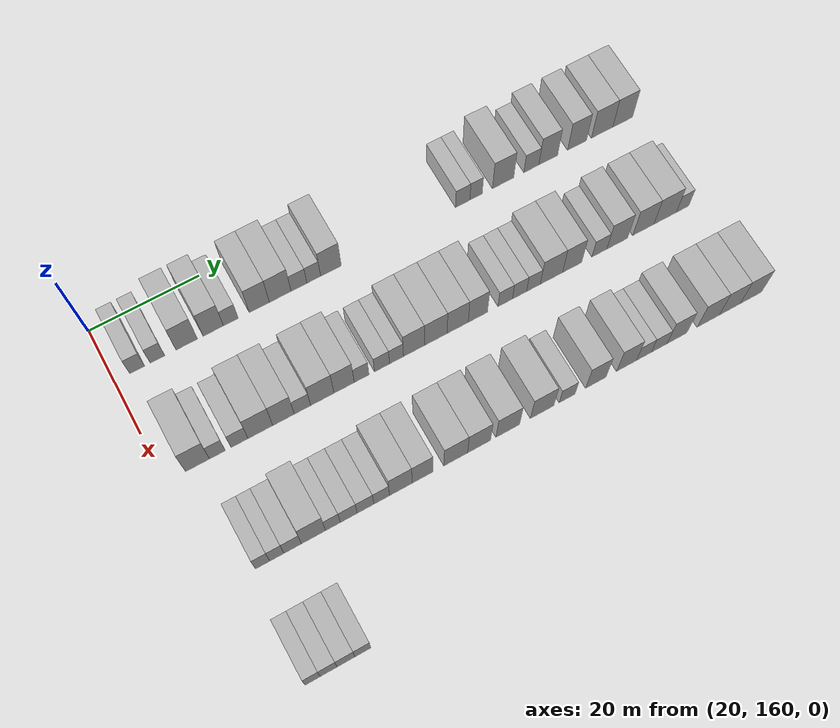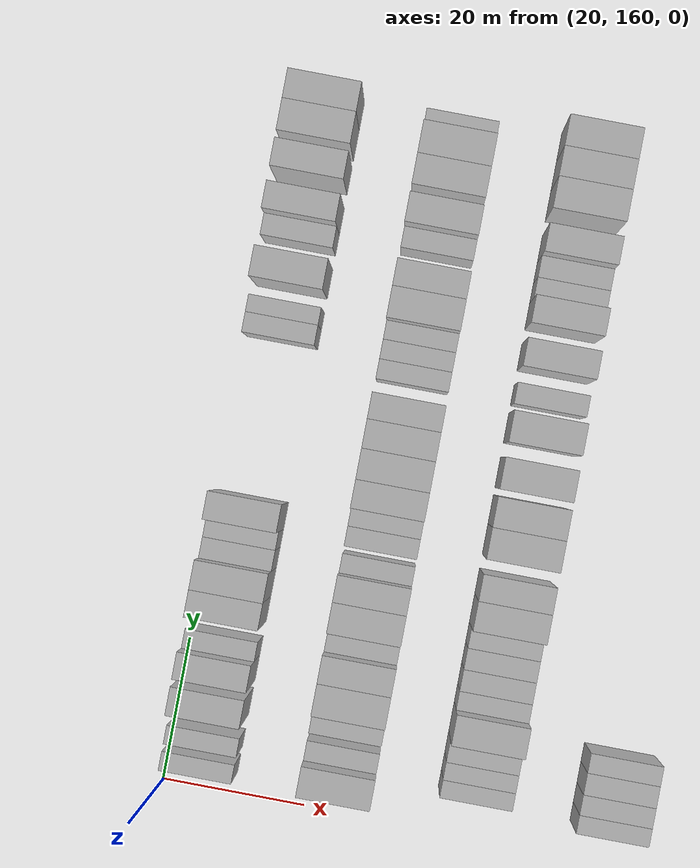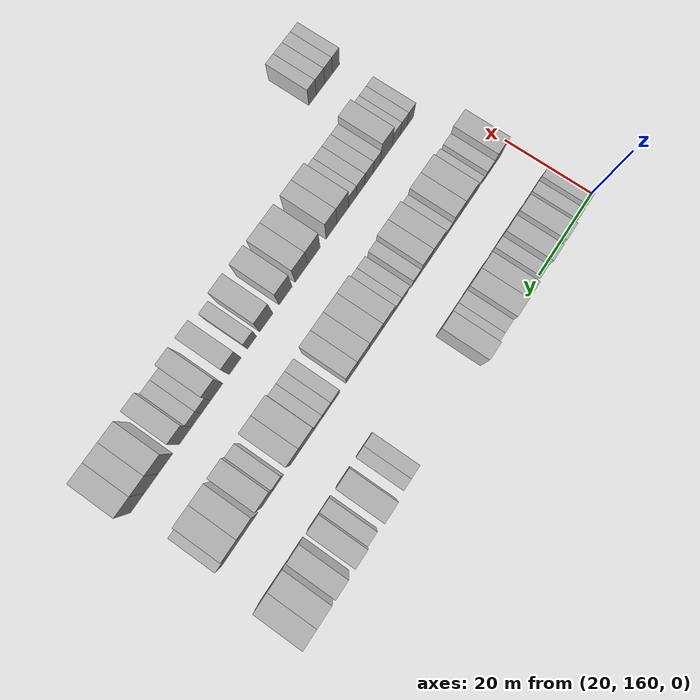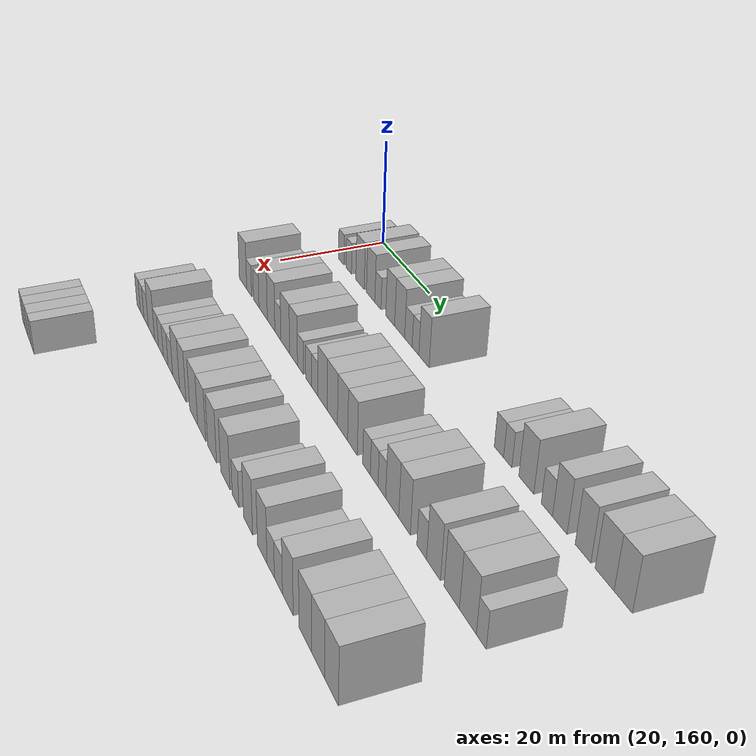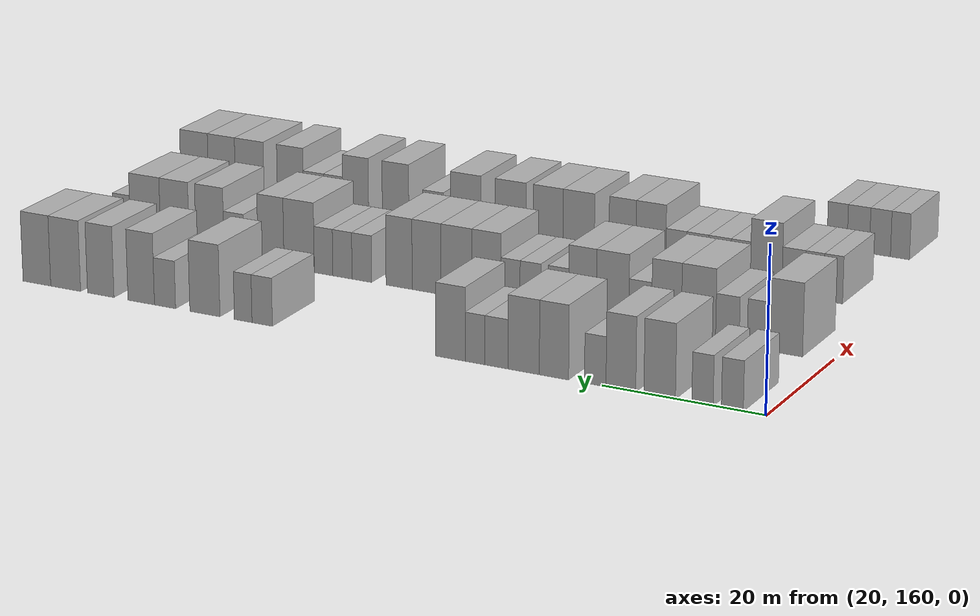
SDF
<sdf version="1.6">
 <world name="default">
  <model name="building_132">
   <static>1</static>
   <pose>25.0000 164.0671 0 0.000000 0.000000 0.000000</pose>
   <link name="link">
    <pose>0 0 3.00 0 0 0</pose>
    <collision name="collision"><geometry><box><size>10.0000 2.6360 6.0000</size></box></geometry></collision>
    <visual name="visual">
     <cast_shadows>0</cast_shadows>
     <geometry><box><size>10.0000 2.6360 6.0000</size></box></geometry>
     <material>
      <script>
       <uri>model://HANNAS_wall/materials/scripts</uri>
       <uri>model://HANNAS_wall/materials/textures</uri>
       <name>vrc/HANNAS_wall</name>
      </script>
     </material>
    </visual>
   </link>
  </model>
  <model name="building_133">
   <static>1</static>
   <pose>25.0000 167.6781 0 0.000000 0.000000 0.000000</pose>
   <link name="link">
    <pose>0 0 3.00 0 0 0</pose>
    <collision name="collision"><geometry><box><size>10.0000 2.5861 6.0000</size></box></geometry></collision>
    <visual name="visual">
     <cast_shadows>0</cast_shadows>
     <geometry><box><size>10.0000 2.5861 6.0000</size></box></geometry>
     <material>
      <script>
       <uri>model://HANNAS_wall/materials/scripts</uri>
       <uri>model://HANNAS_wall/materials/textures</uri>
       <name>vrc/HANNAS_wall</name>
      </script>
     </material>
    </visual>
   </link>
  </model>
  <model name="building_134">
   <static>1</static>
   <pose>25.0000 172.9062 0 0.000000 0.000000 0.000000</pose>
   <link name="link">
    <pose>0 0 4.50 0 0 0</pose>
    <collision name="collision"><geometry><box><size>10.0000 3.8702 9.0000</size></box></geometry></collision>
    <visual name="visual">
     <cast_shadows>0</cast_shadows>
     <geometry><box><size>10.0000 3.8702 9.0000</size></box></geometry>
     <material>
      <script>
       <uri>model://HANNAS_wall/materials/scripts</uri>
       <uri>model://HANNAS_wall/materials/textures</uri>
       <name>vrc/HANNAS_wall</name>
      </script>
     </material>
    </visual>
   </link>
  </model>
  <model name="building_135">
   <static>1</static>
   <pose>25.0000 177.6879 0 0.000000 0.000000 0.000000</pose>
   <link name="link">
    <pose>0 0 4.50 0 0 0</pose>
    <collision name="collision"><geometry><box><size>10.0000 3.6933 9.0000</size></box></geometry></collision>
    <visual name="visual">
     <cast_shadows>0</cast_shadows>
     <geometry><box><size>10.0000 3.6933 9.0000</size></box></geometry>
     <material>
      <script>
       <uri>model://HANNAS_wall/materials/scripts</uri>
       <uri>model://HANNAS_wall/materials/textures</uri>
       <name>vrc/HANNAS_wall</name>
      </script>
     </material>
    </visual>
   </link>
  </model>
  <model name="building_136">
   <static>1</static>
   <pose>25.0000 180.8743 0 0.000000 0.000000 0.000000</pose>
   <link name="link">
    <pose>0 0 3.00 0 0 0</pose>
    <collision name="collision"><geometry><box><size>10.0000 2.6794 6.0000</size></box></geometry></collision>
    <visual name="visual">
     <cast_shadows>0</cast_shadows>
     <geometry><box><size>10.0000 2.6794 6.0000</size></box></geometry>
     <material>
      <script>
       <uri>model://HANNAS_wall/materials/scripts</uri>
       <uri>model://HANNAS_wall/materials/textures</uri>
       <name>vrc/HANNAS_wall</name>
      </script>
     </material>
    </visual>
   </link>
  </model>
  <model name="building_137">
   <static>1</static>
   <pose>25.0000 186.0602 0 0.000000 0.000000 0.000000</pose>
   <link name="link">
    <pose>0 0 4.50 0 0 0</pose>
    <collision name="collision"><geometry><box><size>10.0000 3.6924 9.0000</size></box></geometry></collision>
    <visual name="visual">
     <cast_shadows>0</cast_shadows>
     <geometry><box><size>10.0000 3.6924 9.0000</size></box></geometry>
     <material>
      <script>
       <uri>model://HANNAS_wall/materials/scripts</uri>
       <uri>model://HANNAS_wall/materials/textures</uri>
       <name>vrc/HANNAS_wall</name>
      </script>
     </material>
    </visual>
   </link>
  </model>
  <model name="building_138">
   <static>1</static>
   <pose>25.0000 189.9158 0 0.000000 0.000000 0.000000</pose>
   <link name="link">
    <pose>0 0 4.50 0 0 0</pose>
    <collision name="collision"><geometry><box><size>10.0000 4.0190 9.0000</size></box></geometry></collision>
    <visual name="visual">
     <cast_shadows>0</cast_shadows>
     <geometry><box><size>10.0000 4.0190 9.0000</size></box></geometry>
     <material>
      <script>
       <uri>model://HANNAS_wall/materials/scripts</uri>
       <uri>model://HANNAS_wall/materials/textures</uri>
       <name>vrc/HANNAS_wall</name>
      </script>
     </material>
    </visual>
   </link>
  </model>
  <model name="building_139">
   <static>1</static>
   <pose>25.0000 193.3886 0 0.000000 0.000000 0.000000</pose>
   <link name="link">
    <pose>0 0 3.00 0 0 0</pose>
    <collision name="collision"><geometry><box><size>10.0000 2.9265 6.0000</size></box></geometry></collision>
    <visual name="visual">
     <cast_shadows>0</cast_shadows>
     <geometry><box><size>10.0000 2.9265 6.0000</size></box></geometry>
     <material>
      <script>
       <uri>model://HANNAS_wall/materials/scripts</uri>
       <uri>model://HANNAS_wall/materials/textures</uri>
       <name>vrc/HANNAS_wall</name>
      </script>
     </material>
    </visual>
   </link>
  </model>
  <model name="building_140">
   <static>1</static>
   <pose>25.0000 196.1242 0 0.000000 0.000000 0.000000</pose>
   <link name="link">
    <pose>0 0 3.00 0 0 0</pose>
    <collision name="collision"><geometry><box><size>10.0000 2.5448 6.0000</size></box></geometry></collision>
    <visual name="visual">
     <cast_shadows>0</cast_shadows>
     <geometry><box><size>10.0000 2.5448 6.0000</size></box></geometry>
     <material>
      <script>
       <uri>model://HANNAS_wall/materials/scripts</uri>
       <uri>model://HANNAS_wall/materials/textures</uri>
       <name>vrc/HANNAS_wall</name>
      </script>
     </material>
    </visual>
   </link>
  </model>
  <model name="building_141">
   <static>1</static>
   <pose>25.0000 199.3216 0 0.000000 0.000000 0.000000</pose>
   <link name="link">
    <pose>0 0 4.50 0 0 0</pose>
    <collision name="collision"><geometry><box><size>10.0000 3.8499 9.0000</size></box></geometry></collision>
    <visual name="visual">
     <cast_shadows>0</cast_shadows>
     <geometry><box><size>10.0000 3.8499 9.0000</size></box></geometry>
     <material>
      <script>
       <uri>model://HANNAS_wall/materials/scripts</uri>
       <uri>model://HANNAS_wall/materials/textures</uri>
       <name>vrc/HANNAS_wall</name>
      </script>
     </material>
    </visual>
   </link>
  </model>
  <model name="building_142">
   <static>1</static>
   <pose>25.0000 224.4244 0 0.000000 0.000000 0.000000</pose>
   <link name="link">
    <pose>0 0 3.00 0 0 0</pose>
    <collision name="collision"><geometry><box><size>10.0000 2.7853 6.0000</size></box></geometry></collision>
    <visual name="visual">
     <cast_shadows>0</cast_shadows>
     <geometry><box><size>10.0000 2.7853 6.0000</size></box></geometry>
     <material>
      <script>
       <uri>model://HANNAS_wall/materials/scripts</uri>
       <uri>model://HANNAS_wall/materials/textures</uri>
       <name>vrc/HANNAS_wall</name>
      </script>
     </material>
    </visual>
   </link>
  </model>
  <model name="building_143">
   <static>1</static>
   <pose>25.0000 227.0299 0 0.000000 0.000000 0.000000</pose>
   <link name="link">
    <pose>0 0 3.00 0 0 0</pose>
    <collision name="collision"><geometry><box><size>10.0000 2.4257 6.0000</size></box></geometry></collision>
    <visual name="visual">
     <cast_shadows>0</cast_shadows>
     <geometry><box><size>10.0000 2.4257 6.0000</size></box></geometry>
     <material>
      <script>
       <uri>model://HANNAS_wall/materials/scripts</uri>
       <uri>model://HANNAS_wall/materials/textures</uri>
       <name>vrc/HANNAS_wall</name>
      </script>
     </material>
    </visual>
   </link>
  </model>
  <model name="building_144">
   <static>1</static>
   <pose>25.0000 232.3361 0 0.000000 0.000000 0.000000</pose>
   <link name="link">
    <pose>0 0 4.50 0 0 0</pose>
    <collision name="collision"><geometry><box><size>10.0000 4.1868 9.0000</size></box></geometry></collision>
    <visual name="visual">
     <cast_shadows>0</cast_shadows>
     <geometry><box><size>10.0000 4.1868 9.0000</size></box></geometry>
     <material>
      <script>
       <uri>model://HANNAS_wall/materials/scripts</uri>
       <uri>model://HANNAS_wall/materials/textures</uri>
       <name>vrc/HANNAS_wall</name>
      </script>
     </material>
    </visual>
   </link>
  </model>
  <model name="building_145">
   <static>1</static>
   <pose>25.0000 237.9177 0 0.000000 0.000000 0.000000</pose>
   <link name="link">
    <pose>0 0 3.00 0 0 0</pose>
    <collision name="collision"><geometry><box><size>10.0000 2.9762 6.0000</size></box></geometry></collision>
    <visual name="visual">
     <cast_shadows>0</cast_shadows>
     <geometry><box><size>10.0000 2.9762 6.0000</size></box></geometry>
     <material>
      <script>
       <uri>model://HANNAS_wall/materials/scripts</uri>
       <uri>model://HANNAS_wall/materials/textures</uri>
       <name>vrc/HANNAS_wall</name>
      </script>
     </material>
    </visual>
   </link>
  </model>
  <model name="building_146">
   <static>1</static>
   <pose>25.0000 241.2776 0 0.000000 0.000000 0.000000</pose>
   <link name="link">
    <pose>0 0 4.50 0 0 0</pose>
    <collision name="collision"><geometry><box><size>10.0000 3.7437 9.0000</size></box></geometry></collision>
    <visual name="visual">
     <cast_shadows>0</cast_shadows>
     <geometry><box><size>10.0000 3.7437 9.0000</size></box></geometry>
     <material>
      <script>
       <uri>model://HANNAS_wall/materials/scripts</uri>
       <uri>model://HANNAS_wall/materials/textures</uri>
       <name>vrc/HANNAS_wall</name>
      </script>
     </material>
    </visual>
   </link>
  </model>
  <model name="building_147">
   <static>1</static>
   <pose>25.0000 247.0476 0 0.000000 0.000000 0.000000</pose>
   <link name="link">
    <pose>0 0 4.50 0 0 0</pose>
    <collision name="collision"><geometry><box><size>10.0000 3.7961 9.0000</size></box></geometry></collision>
    <visual name="visual">
     <cast_shadows>0</cast_shadows>
     <geometry><box><size>10.0000 3.7961 9.0000</size></box></geometry>
     <material>
      <script>
       <uri>model://HANNAS_wall/materials/scripts</uri>
       <uri>model://HANNAS_wall/materials/textures</uri>
       <name>vrc/HANNAS_wall</name>
      </script>
     </material>
    </visual>
   </link>
  </model>
  <model name="building_148">
   <static>1</static>
   <pose>25.0000 252.1090 0 0.000000 0.000000 0.000000</pose>
   <link name="link">
    <pose>0 0 4.50 0 0 0</pose>
    <collision name="collision"><geometry><box><size>10.0000 4.3268 9.0000</size></box></geometry></collision>
    <visual name="visual">
     <cast_shadows>0</cast_shadows>
     <geometry><box><size>10.0000 4.3268 9.0000</size></box></geometry>
     <material>
      <script>
       <uri>model://HANNAS_wall/materials/scripts</uri>
       <uri>model://HANNAS_wall/materials/textures</uri>
       <name>vrc/HANNAS_wall</name>
      </script>
     </material>
    </visual>
   </link>
  </model>
  <model name="building_149">
   <static>1</static>
   <pose>25.0000 256.2875 0 0.000000 0.000000 0.000000</pose>
   <link name="link">
    <pose>0 0 4.50 0 0 0</pose>
    <collision name="collision"><geometry><box><size>10.0000 4.0302 9.0000</size></box></geometry></collision>
    <visual name="visual">
     <cast_shadows>0</cast_shadows>
     <geometry><box><size>10.0000 4.0302 9.0000</size></box></geometry>
     <material>
      <script>
       <uri>model://HANNAS_wall/materials/scripts</uri>
       <uri>model://HANNAS_wall/materials/textures</uri>
       <name>vrc/HANNAS_wall</name>
      </script>
     </material>
    </visual>
   </link>
  </model>
  <model name="building_304">
   <static>1</static>
   <pose>44.0000 165.6217 0 0.000000 0.000000 0.000000</pose>
   <link name="link">
    <pose>0 0 4.50 0 0 0</pose>
    <collision name="collision"><geometry><box><size>10.0000 4.1815 9.0000</size></box></geometry></collision>
    <visual name="visual">
     <cast_shadows>0</cast_shadows>
     <geometry><box><size>10.0000 4.1815 9.0000</size></box></geometry>
     <material>
      <script>
       <uri>model://HANNAS_wall/materials/scripts</uri>
       <uri>model://HANNAS_wall/materials/textures</uri>
       <name>vrc/HANNAS_wall</name>
      </script>
     </material>
    </visual>
   </link>
  </model>
  <model name="building_305">
   <static>1</static>
   <pose>44.0000 169.0874 0 0.000000 0.000000 0.000000</pose>
   <link name="link">
    <pose>0 0 3.00 0 0 0</pose>
    <collision name="collision"><geometry><box><size>10.0000 2.7500 6.0000</size></box></geometry></collision>
    <visual name="visual">
     <cast_shadows>0</cast_shadows>
     <geometry><box><size>10.0000 2.7500 6.0000</size></box></geometry>
     <material>
      <script>
       <uri>model://HANNAS_wall/materials/scripts</uri>
       <uri>model://HANNAS_wall/materials/textures</uri>
       <name>vrc/HANNAS_wall</name>
      </script>
     </material>
    </visual>
   </link>
  </model>
  <model name="building_306">
   <static>1</static>
   <pose>44.0000 172.9599 0 0.000000 0.000000 0.000000</pose>
   <link name="link">
    <pose>0 0 3.00 0 0 0</pose>
    <collision name="collision"><geometry><box><size>10.0000 2.9949 6.0000</size></box></geometry></collision>
    <visual name="visual">
     <cast_shadows>0</cast_shadows>
     <geometry><box><size>10.0000 2.9949 6.0000</size></box></geometry>
     <material>
      <script>
       <uri>model://HANNAS_wall/materials/scripts</uri>
       <uri>model://HANNAS_wall/materials/textures</uri>
       <name>vrc/HANNAS_wall</name>
      </script>
     </material>
    </visual>
   </link>
  </model>
  <model name="building_307">
   <static>1</static>
   <pose>44.0000 176.6464 0 0.000000 0.000000 0.000000</pose>
   <link name="link">
    <pose>0 0 4.50 0 0 0</pose>
    <collision name="collision"><geometry><box><size>10.0000 4.3780 9.0000</size></box></geometry></collision>
    <visual name="visual">
     <cast_shadows>0</cast_shadows>
     <geometry><box><size>10.0000 4.3780 9.0000</size></box></geometry>
     <material>
      <script>
       <uri>model://HANNAS_wall/materials/scripts</uri>
       <uri>model://HANNAS_wall/materials/textures</uri>
       <name>vrc/HANNAS_wall</name>
      </script>
     </material>
    </visual>
   </link>
  </model>
  <model name="building_308">
   <static>1</static>
   <pose>44.0000 180.7453 0 0.000000 0.000000 0.000000</pose>
   <link name="link">
    <pose>0 0 4.50 0 0 0</pose>
    <collision name="collision"><geometry><box><size>10.0000 3.8199 9.0000</size></box></geometry></collision>
    <visual name="visual">
     <cast_shadows>0</cast_shadows>
     <geometry><box><size>10.0000 3.8199 9.0000</size></box></geometry>
     <material>
      <script>
       <uri>model://HANNAS_wall/materials/scripts</uri>
       <uri>model://HANNAS_wall/materials/textures</uri>
       <name>vrc/HANNAS_wall</name>
      </script>
     </material>
    </visual>
   </link>
  </model>
  <model name="building_309">
   <static>1</static>
   <pose>44.0000 184.1273 0 0.000000 0.000000 0.000000</pose>
   <link name="link">
    <pose>0 0 3.00 0 0 0</pose>
    <collision name="collision"><geometry><box><size>10.0000 2.9441 6.0000</size></box></geometry></collision>
    <visual name="visual">
     <cast_shadows>0</cast_shadows>
     <geometry><box><size>10.0000 2.9441 6.0000</size></box></geometry>
     <material>
      <script>
       <uri>model://HANNAS_wall/materials/scripts</uri>
       <uri>model://HANNAS_wall/materials/textures</uri>
       <name>vrc/HANNAS_wall</name>
      </script>
     </material>
    </visual>
   </link>
  </model>
  <model name="building_310">
   <static>1</static>
   <pose>44.0000 187.7050 0 0.000000 0.000000 0.000000</pose>
   <link name="link">
    <pose>0 0 4.50 0 0 0</pose>
    <collision name="collision"><geometry><box><size>10.0000 4.2112 9.0000</size></box></geometry></collision>
    <visual name="visual">
     <cast_shadows>0</cast_shadows>
     <geometry><box><size>10.0000 4.2112 9.0000</size></box></geometry>
     <material>
      <script>
       <uri>model://HANNAS_wall/materials/scripts</uri>
       <uri>model://HANNAS_wall/materials/textures</uri>
       <name>vrc/HANNAS_wall</name>
      </script>
     </material>
    </visual>
   </link>
  </model>
  <model name="building_311">
   <static>1</static>
   <pose>44.0000 191.6501 0 0.000000 0.000000 0.000000</pose>
   <link name="link">
    <pose>0 0 4.50 0 0 0</pose>
    <collision name="collision"><geometry><box><size>10.0000 3.6789 9.0000</size></box></geometry></collision>
    <visual name="visual">
     <cast_shadows>0</cast_shadows>
     <geometry><box><size>10.0000 3.6789 9.0000</size></box></geometry>
     <material>
      <script>
       <uri>model://HANNAS_wall/materials/scripts</uri>
       <uri>model://HANNAS_wall/materials/textures</uri>
       <name>vrc/HANNAS_wall</name>
      </script>
     </material>
    </visual>
   </link>
  </model>
  <model name="building_312">
   <static>1</static>
   <pose>44.0000 194.8314 0 0.000000 0.000000 0.000000</pose>
   <link name="link">
    <pose>0 0 3.00 0 0 0</pose>
    <collision name="collision"><geometry><box><size>10.0000 2.6838 6.0000</size></box></geometry></collision>
    <visual name="visual">
     <cast_shadows>0</cast_shadows>
     <geometry><box><size>10.0000 2.6838 6.0000</size></box></geometry>
     <material>
      <script>
       <uri>model://HANNAS_wall/materials/scripts</uri>
       <uri>model://HANNAS_wall/materials/textures</uri>
       <name>vrc/HANNAS_wall</name>
      </script>
     </material>
    </visual>
   </link>
  </model>
  <model name="building_313">
   <static>1</static>
   <pose>44.0000 198.5536 0 0.000000 0.000000 0.000000</pose>
   <link name="link">
    <pose>0 0 3.00 0 0 0</pose>
    <collision name="collision"><geometry><box><size>10.0000 2.7606 6.0000</size></box></geometry></collision>
    <visual name="visual">
     <cast_shadows>0</cast_shadows>
     <geometry><box><size>10.0000 2.7606 6.0000</size></box></geometry>
     <material>
      <script>
       <uri>model://HANNAS_wall/materials/scripts</uri>
       <uri>model://HANNAS_wall/materials/textures</uri>
       <name>vrc/HANNAS_wall</name>
      </script>
     </material>
    </visual>
   </link>
  </model>
  <model name="building_314">
   <static>1</static>
   <pose>44.0000 201.2139 0 0.000000 0.000000 0.000000</pose>
   <link name="link">
    <pose>0 0 3.00 0 0 0</pose>
    <collision name="collision"><geometry><box><size>10.0000 2.5600 6.0000</size></box></geometry></collision>
    <visual name="visual">
     <cast_shadows>0</cast_shadows>
     <geometry><box><size>10.0000 2.5600 6.0000</size></box></geometry>
     <material>
      <script>
       <uri>model://HANNAS_wall/materials/scripts</uri>
       <uri>model://HANNAS_wall/materials/textures</uri>
       <name>vrc/HANNAS_wall</name>
      </script>
     </material>
    </visual>
   </link>
  </model>
  <model name="building_315">
   <static>1</static>
   <pose>44.0000 204.4459 0 0.000000 0.000000 0.000000</pose>
   <link name="link">
    <pose>0 0 4.50 0 0 0</pose>
    <collision name="collision"><geometry><box><size>10.0000 3.9041 9.0000</size></box></geometry></collision>
    <visual name="visual">
     <cast_shadows>0</cast_shadows>
     <geometry><box><size>10.0000 3.9041 9.0000</size></box></geometry>
     <material>
      <script>
       <uri>model://HANNAS_wall/materials/scripts</uri>
       <uri>model://HANNAS_wall/materials/textures</uri>
       <name>vrc/HANNAS_wall</name>
      </script>
     </material>
    </visual>
   </link>
  </model>
  <model name="building_316">
   <static>1</static>
   <pose>44.0000 208.5013 0 0.000000 0.000000 0.000000</pose>
   <link name="link">
    <pose>0 0 4.50 0 0 0</pose>
    <collision name="collision"><geometry><box><size>10.0000 4.2067 9.0000</size></box></geometry></collision>
    <visual name="visual">
     <cast_shadows>0</cast_shadows>
     <geometry><box><size>10.0000 4.2067 9.0000</size></box></geometry>
     <material>
      <script>
       <uri>model://HANNAS_wall/materials/scripts</uri>
       <uri>model://HANNAS_wall/materials/textures</uri>
       <name>vrc/HANNAS_wall</name>
      </script>
     </material>
    </visual>
   </link>
  </model>
  <model name="building_317">
   <static>1</static>
   <pose>44.0000 212.5842 0 0.000000 0.000000 0.000000</pose>
   <link name="link">
    <pose>0 0 4.50 0 0 0</pose>
    <collision name="collision"><geometry><box><size>10.0000 3.9591 9.0000</size></box></geometry></collision>
    <visual name="visual">
     <cast_shadows>0</cast_shadows>
     <geometry><box><size>10.0000 3.9591 9.0000</size></box></geometry>
     <material>
      <script>
       <uri>model://HANNAS_wall/materials/scripts</uri>
       <uri>model://HANNAS_wall/materials/textures</uri>
       <name>vrc/HANNAS_wall</name>
      </script>
     </material>
    </visual>
   </link>
  </model>
  <model name="building_318">
   <static>1</static>
   <pose>44.0000 216.3740 0 0.000000 0.000000 0.000000</pose>
   <link name="link">
    <pose>0 0 4.50 0 0 0</pose>
    <collision name="collision"><geometry><box><size>10.0000 3.6204 9.0000</size></box></geometry></collision>
    <visual name="visual">
     <cast_shadows>0</cast_shadows>
     <geometry><box><size>10.0000 3.6204 9.0000</size></box></geometry>
     <material>
      <script>
       <uri>model://HANNAS_wall/materials/scripts</uri>
       <uri>model://HANNAS_wall/materials/textures</uri>
       <name>vrc/HANNAS_wall</name>
      </script>
     </material>
    </visual>
   </link>
  </model>
  <model name="building_319">
   <static>1</static>
   <pose>44.0000 221.5560 0 0.000000 0.000000 0.000000</pose>
   <link name="link">
    <pose>0 0 3.00 0 0 0</pose>
    <collision name="collision"><geometry><box><size>10.0000 2.7437 6.0000</size></box></geometry></collision>
    <visual name="visual">
     <cast_shadows>0</cast_shadows>
     <geometry><box><size>10.0000 2.7437 6.0000</size></box></geometry>
     <material>
      <script>
       <uri>model://HANNAS_wall/materials/scripts</uri>
       <uri>model://HANNAS_wall/materials/textures</uri>
       <name>vrc/HANNAS_wall</name>
      </script>
     </material>
    </visual>
   </link>
  </model>
  <model name="building_320">
   <static>1</static>
   <pose>44.0000 224.2764 0 0.000000 0.000000 0.000000</pose>
   <link name="link">
    <pose>0 0 3.00 0 0 0</pose>
    <collision name="collision"><geometry><box><size>10.0000 2.6971 6.0000</size></box></geometry></collision>
    <visual name="visual">
     <cast_shadows>0</cast_shadows>
     <geometry><box><size>10.0000 2.6971 6.0000</size></box></geometry>
     <material>
      <script>
       <uri>model://HANNAS_wall/materials/scripts</uri>
       <uri>model://HANNAS_wall/materials/textures</uri>
       <name>vrc/HANNAS_wall</name>
      </script>
     </material>
    </visual>
   </link>
  </model>
  <model name="building_321">
   <static>1</static>
   <pose>44.0000 226.9335 0 0.000000 0.000000 0.000000</pose>
   <link name="link">
    <pose>0 0 3.00 0 0 0</pose>
    <collision name="collision"><geometry><box><size>10.0000 2.6172 6.0000</size></box></geometry></collision>
    <visual name="visual">
     <cast_shadows>0</cast_shadows>
     <geometry><box><size>10.0000 2.6172 6.0000</size></box></geometry>
     <material>
      <script>
       <uri>model://HANNAS_wall/materials/scripts</uri>
       <uri>model://HANNAS_wall/materials/textures</uri>
       <name>vrc/HANNAS_wall</name>
      </script>
     </material>
    </visual>
   </link>
  </model>
  <model name="building_322">
   <static>1</static>
   <pose>44.0000 230.3954 0 0.000000 0.000000 0.000000</pose>
   <link name="link">
    <pose>0 0 4.50 0 0 0</pose>
    <collision name="collision"><geometry><box><size>10.0000 4.3066 9.0000</size></box></geometry></collision>
    <visual name="visual">
     <cast_shadows>0</cast_shadows>
     <geometry><box><size>10.0000 4.3066 9.0000</size></box></geometry>
     <material>
      <script>
       <uri>model://HANNAS_wall/materials/scripts</uri>
       <uri>model://HANNAS_wall/materials/textures</uri>
       <name>vrc/HANNAS_wall</name>
      </script>
     </material>
    </visual>
   </link>
  </model>
  <model name="building_323">
   <static>1</static>
   <pose>44.0000 234.4070 0 0.000000 0.000000 0.000000</pose>
   <link name="link">
    <pose>0 0 4.50 0 0 0</pose>
    <collision name="collision"><geometry><box><size>10.0000 3.7166 9.0000</size></box></geometry></collision>
    <visual name="visual">
     <cast_shadows>0</cast_shadows>
     <geometry><box><size>10.0000 3.7166 9.0000</size></box></geometry>
     <material>
      <script>
       <uri>model://HANNAS_wall/materials/scripts</uri>
       <uri>model://HANNAS_wall/materials/textures</uri>
       <name>vrc/HANNAS_wall</name>
      </script>
     </material>
    </visual>
   </link>
  </model>
  <model name="building_324">
   <static>1</static>
   <pose>44.0000 239.7242 0 0.000000 0.000000 0.000000</pose>
   <link name="link">
    <pose>0 0 3.00 0 0 0</pose>
    <collision name="collision"><geometry><box><size>10.0000 2.9178 6.0000</size></box></geometry></collision>
    <visual name="visual">
     <cast_shadows>0</cast_shadows>
     <geometry><box><size>10.0000 2.9178 6.0000</size></box></geometry>
     <material>
      <script>
       <uri>model://HANNAS_wall/materials/scripts</uri>
       <uri>model://HANNAS_wall/materials/textures</uri>
       <name>vrc/HANNAS_wall</name>
      </script>
     </material>
    </visual>
   </link>
  </model>
  <model name="building_325">
   <static>1</static>
   <pose>44.0000 243.2228 0 0.000000 0.000000 0.000000</pose>
   <link name="link">
    <pose>0 0 4.50 0 0 0</pose>
    <collision name="collision"><geometry><box><size>10.0000 4.0794 9.0000</size></box></geometry></collision>
    <visual name="visual">
     <cast_shadows>0</cast_shadows>
     <geometry><box><size>10.0000 4.0794 9.0000</size></box></geometry>
     <material>
      <script>
       <uri>model://HANNAS_wall/materials/scripts</uri>
       <uri>model://HANNAS_wall/materials/textures</uri>
       <name>vrc/HANNAS_wall</name>
      </script>
     </material>
    </visual>
   </link>
  </model>
  <model name="building_326">
   <static>1</static>
   <pose>44.0000 248.3640 0 0.000000 0.000000 0.000000</pose>
   <link name="link">
    <pose>0 0 4.50 0 0 0</pose>
    <collision name="collision"><geometry><box><size>10.0000 4.2029 9.0000</size></box></geometry></collision>
    <visual name="visual">
     <cast_shadows>0</cast_shadows>
     <geometry><box><size>10.0000 4.2029 9.0000</size></box></geometry>
     <material>
      <script>
       <uri>model://HANNAS_wall/materials/scripts</uri>
       <uri>model://HANNAS_wall/materials/textures</uri>
       <name>vrc/HANNAS_wall</name>
      </script>
     </material>
    </visual>
   </link>
  </model>
  <model name="building_327">
   <static>1</static>
   <pose>44.0000 252.7003 0 0.000000 0.000000 0.000000</pose>
   <link name="link">
    <pose>0 0 4.50 0 0 0</pose>
    <collision name="collision"><geometry><box><size>10.0000 4.4698 9.0000</size></box></geometry></collision>
    <visual name="visual">
     <cast_shadows>0</cast_shadows>
     <geometry><box><size>10.0000 4.4698 9.0000</size></box></geometry>
     <material>
      <script>
       <uri>model://HANNAS_wall/materials/scripts</uri>
       <uri>model://HANNAS_wall/materials/textures</uri>
       <name>vrc/HANNAS_wall</name>
      </script>
     </material>
    </visual>
   </link>
  </model>
  <model name="building_328">
   <static>1</static>
   <pose>44.0000 256.1833 0 0.000000 0.000000 0.000000</pose>
   <link name="link">
    <pose>0 0 3.00 0 0 0</pose>
    <collision name="collision"><geometry><box><size>10.0000 2.4962 6.0000</size></box></geometry></collision>
    <visual name="visual">
     <cast_shadows>0</cast_shadows>
     <geometry><box><size>10.0000 2.4962 6.0000</size></box></geometry>
     <material>
      <script>
       <uri>model://HANNAS_wall/materials/scripts</uri>
       <uri>model://HANNAS_wall/materials/textures</uri>
       <name>vrc/HANNAS_wall</name>
      </script>
     </material>
    </visual>
   </link>
  </model>
  <model name="building_477">
   <static>1</static>
   <pose>63.0000 167.4214 0 0.000000 0.000000 0.000000</pose>
   <link name="link">
    <pose>0 0 3.00 0 0 0</pose>
    <collision name="collision"><geometry><box><size>10.0000 2.4494 6.0000</size></box></geometry></collision>
    <visual name="visual">
     <cast_shadows>0</cast_shadows>
     <geometry><box><size>10.0000 2.4494 6.0000</size></box></geometry>
     <material>
      <script>
       <uri>model://HANNAS_wall/materials/scripts</uri>
       <uri>model://HANNAS_wall/materials/textures</uri>
       <name>vrc/HANNAS_wall</name>
      </script>
     </material>
    </visual>
   </link>
  </model>
  <model name="building_478">
   <static>1</static>
   <pose>63.0000 169.8638 0 0.000000 0.000000 0.000000</pose>
   <link name="link">
    <pose>0 0 3.00 0 0 0</pose>
    <collision name="collision"><geometry><box><size>10.0000 2.4354 6.0000</size></box></geometry></collision>
    <visual name="visual">
     <cast_shadows>0</cast_shadows>
     <geometry><box><size>10.0000 2.4354 6.0000</size></box></geometry>
     <material>
      <script>
       <uri>model://HANNAS_wall/materials/scripts</uri>
       <uri>model://HANNAS_wall/materials/textures</uri>
       <name>vrc/HANNAS_wall</name>
      </script>
     </material>
    </visual>
   </link>
  </model>
  <model name="building_479">
   <static>1</static>
   <pose>63.0000 172.5766 0 0.000000 0.000000 0.000000</pose>
   <link name="link">
    <pose>0 0 3.00 0 0 0</pose>
    <collision name="collision"><geometry><box><size>10.0000 2.9901 6.0000</size></box></geometry></collision>
    <visual name="visual">
     <cast_shadows>0</cast_shadows>
     <geometry><box><size>10.0000 2.9901 6.0000</size></box></geometry>
     <material>
      <script>
       <uri>model://HANNAS_wall/materials/scripts</uri>
       <uri>model://HANNAS_wall/materials/textures</uri>
       <name>vrc/HANNAS_wall</name>
      </script>
     </material>
    </visual>
   </link>
  </model>
  <model name="building_480">
   <static>1</static>
   <pose>63.0000 176.1575 0 0.000000 0.000000 0.000000</pose>
   <link name="link">
    <pose>0 0 4.50 0 0 0</pose>
    <collision name="collision"><geometry><box><size>10.0000 4.1718 9.0000</size></box></geometry></collision>
    <visual name="visual">
     <cast_shadows>0</cast_shadows>
     <geometry><box><size>10.0000 4.1718 9.0000</size></box></geometry>
     <material>
      <script>
       <uri>model://HANNAS_wall/materials/scripts</uri>
       <uri>model://HANNAS_wall/materials/textures</uri>
       <name>vrc/HANNAS_wall</name>
      </script>
     </material>
    </visual>
   </link>
  </model>
  <model name="building_481">
   <static>1</static>
   <pose>63.0000 179.5394 0 0.000000 0.000000 0.000000</pose>
   <link name="link">
    <pose>0 0 3.00 0 0 0</pose>
    <collision name="collision"><geometry><box><size>10.0000 2.5919 6.0000</size></box></geometry></collision>
    <visual name="visual">
     <cast_shadows>0</cast_shadows>
     <geometry><box><size>10.0000 2.5919 6.0000</size></box></geometry>
     <material>
      <script>
       <uri>model://HANNAS_wall/materials/scripts</uri>
       <uri>model://HANNAS_wall/materials/textures</uri>
       <name>vrc/HANNAS_wall</name>
      </script>
     </material>
    </visual>
   </link>
  </model>
  <model name="building_482">
   <static>1</static>
   <pose>63.0000 182.3207 0 0.000000 0.000000 0.000000</pose>
   <link name="link">
    <pose>0 0 3.00 0 0 0</pose>
    <collision name="collision"><geometry><box><size>10.0000 2.9708 6.0000</size></box></geometry></collision>
    <visual name="visual">
     <cast_shadows>0</cast_shadows>
     <geometry><box><size>10.0000 2.9708 6.0000</size></box></geometry>
     <material>
      <script>
       <uri>model://HANNAS_wall/materials/scripts</uri>
       <uri>model://HANNAS_wall/materials/textures</uri>
       <name>vrc/HANNAS_wall</name>
      </script>
     </material>
    </visual>
   </link>
  </model>
  <model name="building_483">
   <static>1</static>
   <pose>63.0000 185.2735 0 0.000000 0.000000 0.000000</pose>
   <link name="link">
    <pose>0 0 3.00 0 0 0</pose>
    <collision name="collision"><geometry><box><size>10.0000 2.9347 6.0000</size></box></geometry></collision>
    <visual name="visual">
     <cast_shadows>0</cast_shadows>
     <geometry><box><size>10.0000 2.9347 6.0000</size></box></geometry>
     <material>
      <script>
       <uri>model://HANNAS_wall/materials/scripts</uri>
       <uri>model://HANNAS_wall/materials/textures</uri>
       <name>vrc/HANNAS_wall</name>
      </script>
     </material>
    </visual>
   </link>
  </model>
  <model name="building_484">
   <static>1</static>
   <pose>63.0000 188.1215 0 0.000000 0.000000 0.000000</pose>
   <link name="link">
    <pose>0 0 3.00 0 0 0</pose>
    <collision name="collision"><geometry><box><size>10.0000 2.7613 6.0000</size></box></geometry></collision>
    <visual name="visual">
     <cast_shadows>0</cast_shadows>
     <geometry><box><size>10.0000 2.7613 6.0000</size></box></geometry>
     <material>
      <script>
       <uri>model://HANNAS_wall/materials/scripts</uri>
       <uri>model://HANNAS_wall/materials/textures</uri>
       <name>vrc/HANNAS_wall</name>
      </script>
     </material>
    </visual>
   </link>
  </model>
  <model name="building_485">
   <static>1</static>
   <pose>63.0000 191.5206 0 0.000000 0.000000 0.000000</pose>
   <link name="link">
    <pose>0 0 4.50 0 0 0</pose>
    <collision name="collision"><geometry><box><size>10.0000 4.0368 9.0000</size></box></geometry></collision>
    <visual name="visual">
     <cast_shadows>0</cast_shadows>
     <geometry><box><size>10.0000 4.0368 9.0000</size></box></geometry>
     <material>
      <script>
       <uri>model://HANNAS_wall/materials/scripts</uri>
       <uri>model://HANNAS_wall/materials/textures</uri>
       <name>vrc/HANNAS_wall</name>
      </script>
     </material>
    </visual>
   </link>
  </model>
  <model name="building_486">
   <static>1</static>
   <pose>63.0000 195.3687 0 0.000000 0.000000 0.000000</pose>
   <link name="link">
    <pose>0 0 4.50 0 0 0</pose>
    <collision name="collision"><geometry><box><size>10.0000 3.6594 9.0000</size></box></geometry></collision>
    <visual name="visual">
     <cast_shadows>0</cast_shadows>
     <geometry><box><size>10.0000 3.6594 9.0000</size></box></geometry>
     <material>
      <script>
       <uri>model://HANNAS_wall/materials/scripts</uri>
       <uri>model://HANNAS_wall/materials/textures</uri>
       <name>vrc/HANNAS_wall</name>
      </script>
     </material>
    </visual>
   </link>
  </model>
  <model name="building_487">
   <static>1</static>
   <pose>63.0000 201.3502 0 0.000000 0.000000 0.000000</pose>
   <link name="link">
    <pose>0 0 4.50 0 0 0</pose>
    <collision name="collision"><geometry><box><size>10.0000 4.3036 9.0000</size></box></geometry></collision>
    <visual name="visual">
     <cast_shadows>0</cast_shadows>
     <geometry><box><size>10.0000 4.3036 9.0000</size></box></geometry>
     <material>
      <script>
       <uri>model://HANNAS_wall/materials/scripts</uri>
       <uri>model://HANNAS_wall/materials/textures</uri>
       <name>vrc/HANNAS_wall</name>
      </script>
     </material>
    </visual>
   </link>
  </model>
  <model name="building_488">
   <static>1</static>
   <pose>63.0000 205.5857 0 0.000000 0.000000 0.000000</pose>
   <link name="link">
    <pose>0 0 4.50 0 0 0</pose>
    <collision name="collision"><geometry><box><size>10.0000 4.1674 9.0000</size></box></geometry></collision>
    <visual name="visual">
     <cast_shadows>0</cast_shadows>
     <geometry><box><size>10.0000 4.1674 9.0000</size></box></geometry>
     <material>
      <script>
       <uri>model://HANNAS_wall/materials/scripts</uri>
       <uri>model://HANNAS_wall/materials/textures</uri>
       <name>vrc/HANNAS_wall</name>
      </script>
     </material>
    </visual>
   </link>
  </model>
  <model name="building_489">
   <static>1</static>
   <pose>63.0000 210.8397 0 0.000000 0.000000 0.000000</pose>
   <link name="link">
    <pose>0 0 4.50 0 0 0</pose>
    <collision name="collision"><geometry><box><size>10.0000 4.3406 9.0000</size></box></geometry></collision>
    <visual name="visual">
     <cast_shadows>0</cast_shadows>
     <geometry><box><size>10.0000 4.3406 9.0000</size></box></geometry>
     <material>
      <script>
       <uri>model://HANNAS_wall/materials/scripts</uri>
       <uri>model://HANNAS_wall/materials/textures</uri>
       <name>vrc/HANNAS_wall</name>
      </script>
     </material>
    </visual>
   </link>
  </model>
  <model name="building_490">
   <static>1</static>
   <pose>63.0000 217.1767 0 0.000000 0.000000 0.000000</pose>
   <link name="link">
    <pose>0 0 4.50 0 0 0</pose>
    <collision name="collision"><geometry><box><size>10.0000 4.3335 9.0000</size></box></geometry></collision>
    <visual name="visual">
     <cast_shadows>0</cast_shadows>
     <geometry><box><size>10.0000 4.3335 9.0000</size></box></geometry>
     <material>
      <script>
       <uri>model://HANNAS_wall/materials/scripts</uri>
       <uri>model://HANNAS_wall/materials/textures</uri>
       <name>vrc/HANNAS_wall</name>
      </script>
     </material>
    </visual>
   </link>
  </model>
  <model name="building_491">
   <static>1</static>
   <pose>63.0000 221.8206 0 0.000000 0.000000 0.000000</pose>
   <link name="link">
    <pose>0 0 3.00 0 0 0</pose>
    <collision name="collision"><geometry><box><size>10.0000 2.9542 6.0000</size></box></geometry></collision>
    <visual name="visual">
     <cast_shadows>0</cast_shadows>
     <geometry><box><size>10.0000 2.9542 6.0000</size></box></geometry>
     <material>
      <script>
       <uri>model://HANNAS_wall/materials/scripts</uri>
       <uri>model://HANNAS_wall/materials/textures</uri>
       <name>vrc/HANNAS_wall</name>
      </script>
     </material>
    </visual>
   </link>
  </model>
  <model name="building_492">
   <static>1</static>
   <pose>63.0000 227.2173 0 0.000000 0.000000 0.000000</pose>
   <link name="link">
    <pose>0 0 4.50 0 0 0</pose>
    <collision name="collision"><geometry><box><size>10.0000 3.8393 9.0000</size></box></geometry></collision>
    <visual name="visual">
     <cast_shadows>0</cast_shadows>
     <geometry><box><size>10.0000 3.8393 9.0000</size></box></geometry>
     <material>
      <script>
       <uri>model://HANNAS_wall/materials/scripts</uri>
       <uri>model://HANNAS_wall/materials/textures</uri>
       <name>vrc/HANNAS_wall</name>
      </script>
     </material>
    </visual>
   </link>
  </model>
  <model name="building_493">
   <static>1</static>
   <pose>63.0000 233.0257 0 0.000000 0.000000 0.000000</pose>
   <link name="link">
    <pose>0 0 4.50 0 0 0</pose>
    <collision name="collision"><geometry><box><size>10.0000 3.7775 9.0000</size></box></geometry></collision>
    <visual name="visual">
     <cast_shadows>0</cast_shadows>
     <geometry><box><size>10.0000 3.7775 9.0000</size></box></geometry>
     <material>
      <script>
       <uri>model://HANNAS_wall/materials/scripts</uri>
       <uri>model://HANNAS_wall/materials/textures</uri>
       <name>vrc/HANNAS_wall</name>
      </script>
     </material>
    </visual>
   </link>
  </model>
  <model name="building_494">
   <static>1</static>
   <pose>63.0000 236.3271 0 0.000000 0.000000 0.000000</pose>
   <link name="link">
    <pose>0 0 3.00 0 0 0</pose>
    <collision name="collision"><geometry><box><size>10.0000 2.8253 6.0000</size></box></geometry></collision>
    <visual name="visual">
     <cast_shadows>0</cast_shadows>
     <geometry><box><size>10.0000 2.8253 6.0000</size></box></geometry>
     <material>
      <script>
       <uri>model://HANNAS_wall/materials/scripts</uri>
       <uri>model://HANNAS_wall/materials/textures</uri>
       <name>vrc/HANNAS_wall</name>
      </script>
     </material>
    </visual>
   </link>
  </model>
  <model name="building_495">
   <static>1</static>
   <pose>63.0000 239.2376 0 0.000000 0.000000 0.000000</pose>
   <link name="link">
    <pose>0 0 3.00 0 0 0</pose>
    <collision name="collision"><geometry><box><size>10.0000 2.9957 6.0000</size></box></geometry></collision>
    <visual name="visual">
     <cast_shadows>0</cast_shadows>
     <geometry><box><size>10.0000 2.9957 6.0000</size></box></geometry>
     <material>
      <script>
       <uri>model://HANNAS_wall/materials/scripts</uri>
       <uri>model://HANNAS_wall/materials/textures</uri>
       <name>vrc/HANNAS_wall</name>
      </script>
     </material>
    </visual>
   </link>
  </model>
  <model name="building_496">
   <static>1</static>
   <pose>63.0000 242.6724 0 0.000000 0.000000 0.000000</pose>
   <link name="link">
    <pose>0 0 4.50 0 0 0</pose>
    <collision name="collision"><geometry><box><size>10.0000 3.8739 9.0000</size></box></geometry></collision>
    <visual name="visual">
     <cast_shadows>0</cast_shadows>
     <geometry><box><size>10.0000 3.8739 9.0000</size></box></geometry>
     <material>
      <script>
       <uri>model://HANNAS_wall/materials/scripts</uri>
       <uri>model://HANNAS_wall/materials/textures</uri>
       <name>vrc/HANNAS_wall</name>
      </script>
     </material>
    </visual>
   </link>
  </model>
  <model name="building_497">
   <static>1</static>
   <pose>63.0000 248.7728 0 0.000000 0.000000 0.000000</pose>
   <link name="link">
    <pose>0 0 4.50 0 0 0</pose>
    <collision name="collision"><geometry><box><size>10.0000 4.3269 9.0000</size></box></geometry></collision>
    <visual name="visual">
     <cast_shadows>0</cast_shadows>
     <geometry><box><size>10.0000 4.3269 9.0000</size></box></geometry>
     <material>
      <script>
       <uri>model://HANNAS_wall/materials/scripts</uri>
       <uri>model://HANNAS_wall/materials/textures</uri>
       <name>vrc/HANNAS_wall</name>
      </script>
     </material>
    </visual>
   </link>
  </model>
  <model name="building_498">
   <static>1</static>
   <pose>63.0000 252.9848 0 0.000000 0.000000 0.000000</pose>
   <link name="link">
    <pose>0 0 4.50 0 0 0</pose>
    <collision name="collision"><geometry><box><size>10.0000 4.0972 9.0000</size></box></geometry></collision>
    <visual name="visual">
     <cast_shadows>0</cast_shadows>
     <geometry><box><size>10.0000 4.0972 9.0000</size></box></geometry>
     <material>
      <script>
       <uri>model://HANNAS_wall/materials/scripts</uri>
       <uri>model://HANNAS_wall/materials/textures</uri>
       <name>vrc/HANNAS_wall</name>
      </script>
     </material>
    </visual>
   </link>
  </model>
  <model name="building_499">
   <static>1</static>
   <pose>63.0000 257.1512 0 0.000000 0.000000 0.000000</pose>
   <link name="link">
    <pose>0 0 4.50 0 0 0</pose>
    <collision name="collision"><geometry><box><size>10.0000 4.2357 9.0000</size></box></geometry></collision>
    <visual name="visual">
     <cast_shadows>0</cast_shadows>
     <geometry><box><size>10.0000 4.2357 9.0000</size></box></geometry>
     <material>
      <script>
       <uri>model://HANNAS_wall/materials/scripts</uri>
       <uri>model://HANNAS_wall/materials/textures</uri>
       <name>vrc/HANNAS_wall</name>
      </script>
     </material>
    </visual>
   </link>
  </model>
  <model name="building_651">
   <static>1</static>
   <pose>82.0000 166.1314 0 0.000000 0.000000 0.000000</pose>
   <link name="link">
    <pose>0 0 3.00 0 0 0</pose>
    <collision name="collision"><geometry><box><size>10.0000 2.5272 6.0000</size></box></geometry></collision>
    <visual name="visual">
     <cast_shadows>0</cast_shadows>
     <geometry><box><size>10.0000 2.5272 6.0000</size></box></geometry>
     <material>
      <script>
       <uri>model://HANNAS_wall/materials/scripts</uri>
       <uri>model://HANNAS_wall/materials/textures</uri>
       <name>vrc/HANNAS_wall</name>
      </script>
     </material>
    </visual>
   </link>
  </model>
  <model name="building_652">
   <static>1</static>
   <pose>82.0000 168.7957 0 0.000000 0.000000 0.000000</pose>
   <link name="link">
    <pose>0 0 3.00 0 0 0</pose>
    <collision name="collision"><geometry><box><size>10.0000 2.8014 6.0000</size></box></geometry></collision>
    <visual name="visual">
     <cast_shadows>0</cast_shadows>
     <geometry><box><size>10.0000 2.8014 6.0000</size></box></geometry>
     <material>
      <script>
       <uri>model://HANNAS_wall/materials/scripts</uri>
       <uri>model://HANNAS_wall/materials/textures</uri>
       <name>vrc/HANNAS_wall</name>
      </script>
     </material>
    </visual>
   </link>
  </model>
  <model name="building_653">
   <static>1</static>
   <pose>82.0000 171.6938 0 0.000000 0.000000 0.000000</pose>
   <link name="link">
    <pose>0 0 3.00 0 0 0</pose>
    <collision name="collision"><geometry><box><size>10.0000 2.9949 6.0000</size></box></geometry></collision>
    <visual name="visual">
     <cast_shadows>0</cast_shadows>
     <geometry><box><size>10.0000 2.9949 6.0000</size></box></geometry>
     <material>
      <script>
       <uri>model://HANNAS_wall/materials/scripts</uri>
       <uri>model://HANNAS_wall/materials/textures</uri>
       <name>vrc/HANNAS_wall</name>
      </script>
     </material>
    </visual>
   </link>
  </model>
  <model name="building_654">
   <static>1</static>
   <pose>82.0000 174.5457 0 0.000000 0.000000 0.000000</pose>
   <link name="link">
    <pose>0 0 3.00 0 0 0</pose>
    <collision name="collision"><geometry><box><size>10.0000 2.7090 6.0000</size></box></geometry></collision>
    <visual name="visual">
     <cast_shadows>0</cast_shadows>
     <geometry><box><size>10.0000 2.7090 6.0000</size></box></geometry>
     <material>
      <script>
       <uri>model://HANNAS_wall/materials/scripts</uri>
       <uri>model://HANNAS_wall/materials/textures</uri>
       <name>vrc/HANNAS_wall</name>
      </script>
     </material>
    </visual>
   </link>
  </model>
 </world>
</sdf>
